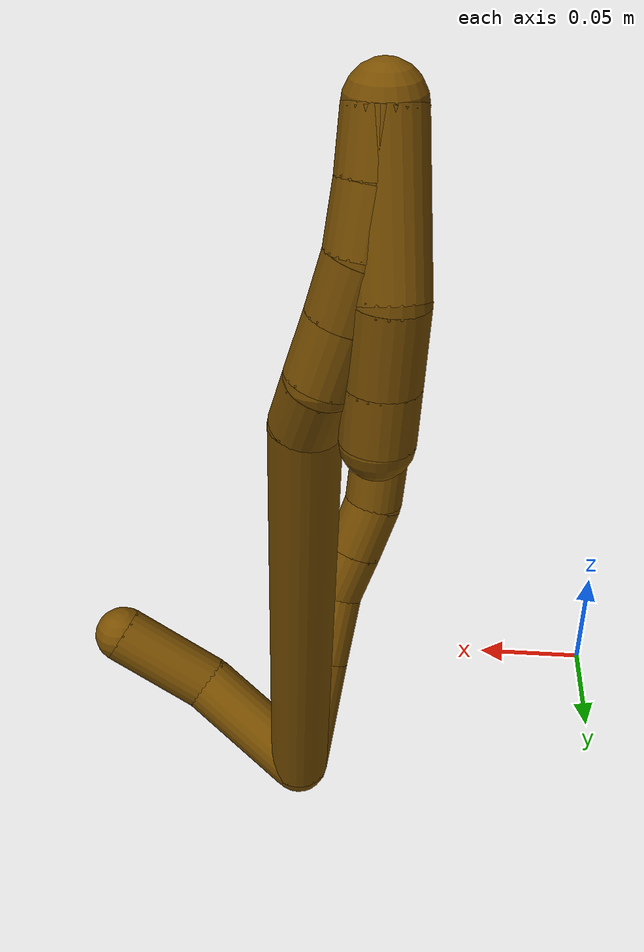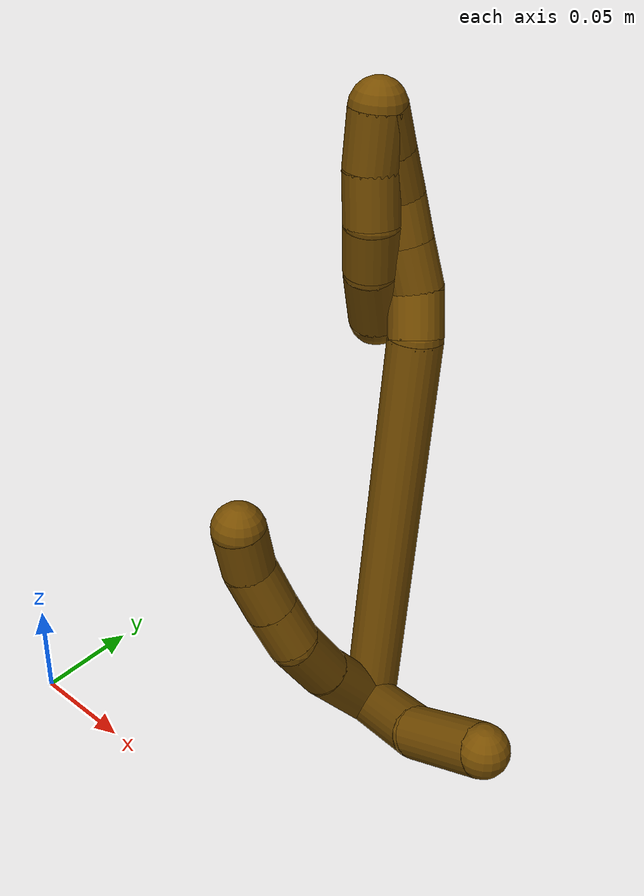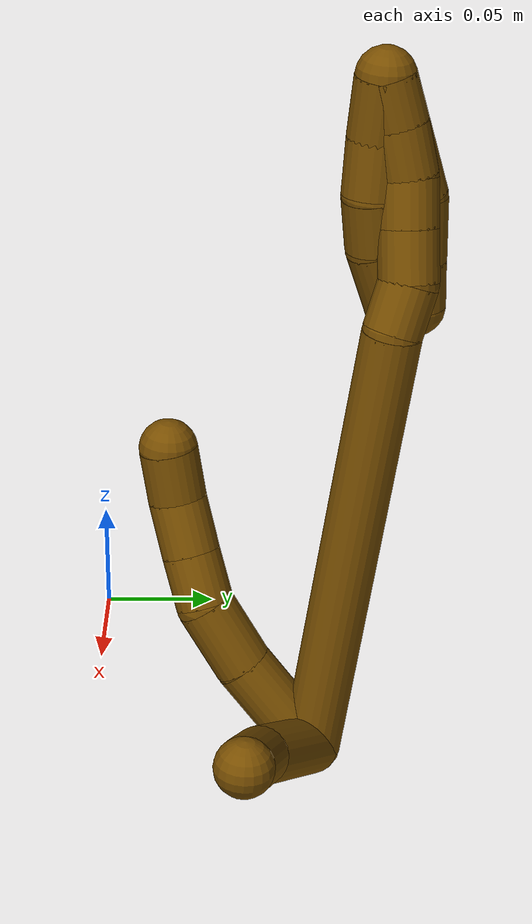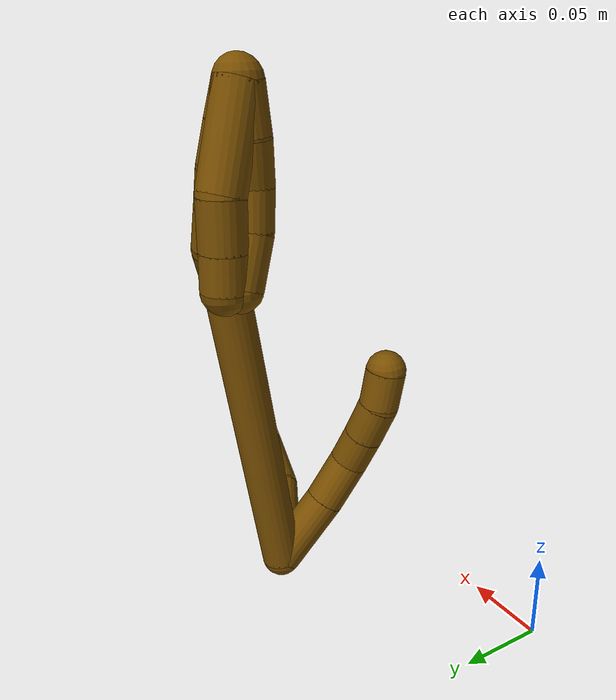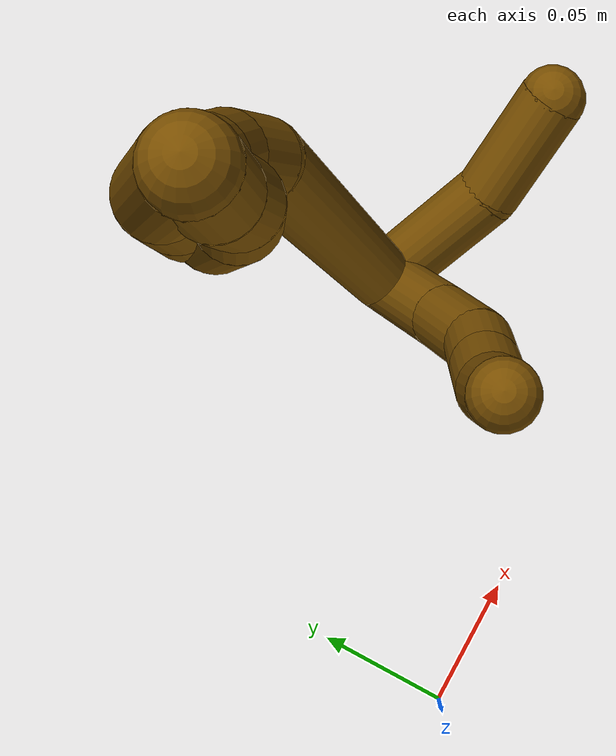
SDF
<sdf version="1.7">
 <world name="default">
  <model name="12">
   <static>0</static>
   <link name="12">
    <collision name="collision-cylinder-e_1_2_8">
     <pose>-0.003622 -0.015588 0.017711 0.721742 -0.152337 -0.057587</pose>
     <geometry><cylinder><radius>0.0125</radius><length>0.04774</length></cylinder></geometry>
     <surface>
      <friction><ode><mu>1.16</mu><mu2>1.16</mu2><slip1>0</slip1><slip2>0</slip2></ode></friction>
      <contact><ode><kp>1e+06</kp><kd>1</kd><max_vel>0</max_vel><min_depth>0.001</min_depth></ode></contact>
     </surface>
    </collision>
    <visual name="visual-cylinder-e_1_2_8">
     <pose>-0.003622 -0.015588 0.017711 0.721742 -0.152337 -0.057587</pose>
     <geometry><cylinder><radius>0.0125</radius><length>0.04774</length></cylinder></geometry>
     <material><ambient>0.466667 0.301961 0 1</ambient></material>
    </visual>
    <collision name="collision-cylinder-e_2_8_9">
     <pose>-0.009917 -0.03993 0.048406 0.593167 -0.169028 -0.051766</pose>
     <geometry><cylinder><radius>0.0125</radius><length>0.031774</length></cylinder></geometry>
     <surface>
      <friction><ode><mu>1.16</mu><mu2>1.16</mu2><slip1>0</slip1><slip2>0</slip2></ode></friction>
      <contact><ode><kp>1e+06</kp><kd>1</kd><max_vel>0</max_vel><min_depth>0.001</min_depth></ode></contact>
     </surface>
    </collision>
    <visual name="visual-cylinder-e_2_8_9">
     <pose>-0.009917 -0.03993 0.048406 0.593167 -0.169028 -0.051766</pose>
     <geometry><cylinder><radius>0.0125</radius><length>0.031774</length></cylinder></geometry>
     <material><ambient>0.466667 0.301961 0 1</ambient></material>
    </visual>
    <collision name="collision-cylinder-e_3_9_10">
     <pose>-0.016757 -0.052163 0.071482 0.332036 -0.372216 -0.063078</pose>
     <geometry><cylinder><radius>0.0125</radius><length>0.022917</length></cylinder></geometry>
     <surface>
      <friction><ode><mu>1.16</mu><mu2>1.16</mu2><slip1>0</slip1><slip2>0</slip2></ode></friction>
      <contact><ode><kp>1e+06</kp><kd>1</kd><max_vel>0</max_vel><min_depth>0.001</min_depth></ode></contact>
     </surface>
    </collision>
    <visual name="visual-cylinder-e_3_9_10">
     <pose>-0.016757 -0.052163 0.071482 0.332036 -0.372216 -0.063078</pose>
     <geometry><cylinder><radius>0.0125</radius><length>0.022917</length></cylinder></geometry>
     <material><ambient>0.466667 0.301961 0 1</ambient></material>
    </visual>
    <collision name="collision-cylinder-e_4_10_11">
     <pose>-0.025018 -0.05903 0.092455 0.30175 -0.344887 -0.052947</pose>
     <geometry><cylinder><radius>0.0125</radius><length>0.024219</length></cylinder></geometry>
     <surface>
      <friction><ode><mu>1.16</mu><mu2>1.16</mu2><slip1>0</slip1><slip2>0</slip2></ode></friction>
      <contact><ode><kp>1e+06</kp><kd>1</kd><max_vel>0</max_vel><min_depth>0.001</min_depth></ode></contact>
     </surface>
    </collision>
    <visual name="visual-cylinder-e_4_10_11">
     <pose>-0.025018 -0.05903 0.092455 0.30175 -0.344887 -0.052947</pose>
     <geometry><cylinder><radius>0.0125</radius><length>0.024219</length></cylinder></geometry>
     <material><ambient>0.466667 0.301961 0 1</ambient></material>
    </visual>
    <collision name="collision-cylinder-e_5_11_6">
     <pose>-0.030267 -0.064773 0.114713 0.204232 -0.099088 -0.010162</pose>
     <geometry><cylinder><radius>0.0125</radius><length>0.023351</length></cylinder></geometry>
     <surface>
      <friction><ode><mu>1.16</mu><mu2>1.16</mu2><slip1>0</slip1><slip2>0</slip2></ode></friction>
      <contact><ode><kp>1e+06</kp><kd>1</kd><max_vel>0</max_vel><min_depth>0.001</min_depth></ode></contact>
     </surface>
    </collision>
    <visual name="visual-cylinder-e_5_11_6">
     <pose>-0.030267 -0.064773 0.114713 0.204232 -0.099088 -0.010162</pose>
     <geometry><cylinder><radius>0.0125</radius><length>0.023351</length></cylinder></geometry>
     <material><ambient>0.466667 0.301961 0 1</ambient></material>
    </visual>
    <collision name="collision-cylinder-e_1_2_12">
     <pose>0.022024 -0.011866 0.012229 0.770335 0.912311 0.392725</pose>
     <geometry><cylinder><radius>0.0125</radius><length>0.055693</length></cylinder></geometry>
     <surface>
      <friction><ode><mu>1.16</mu><mu2>1.16</mu2><slip1>0</slip1><slip2>0</slip2></ode></friction>
      <contact><ode><kp>1e+06</kp><kd>1</kd><max_vel>0</max_vel><min_depth>0.001</min_depth></ode></contact>
     </surface>
    </collision>
    <visual name="visual-cylinder-e_1_2_12">
     <pose>0.022024 -0.011866 0.012229 0.770335 0.912311 0.392725</pose>
     <geometry><cylinder><radius>0.0125</radius><length>0.055693</length></cylinder></geometry>
     <material><ambient>0.466667 0.301961 0 1</ambient></material>
    </visual>
    <collision name="collision-cylinder-e_2_12_5">
     <pose>0.0631 -0.027383 0.035159 0.328754 1.03517 0.188325</pose>
     <geometry><cylinder><radius>0.0125</radius><length>0.044307</length></cylinder></geometry>
     <surface>
      <friction><ode><mu>1.16</mu><mu2>1.16</mu2><slip1>0</slip1><slip2>0</slip2></ode></friction>
      <contact><ode><kp>1e+06</kp><kd>1</kd><max_vel>0</max_vel><min_depth>0.001</min_depth></ode></contact>
     </surface>
    </collision>
    <visual name="visual-cylinder-e_2_12_5">
     <pose>0.0631 -0.027383 0.035159 0.328754 1.03517 0.188325</pose>
     <geometry><cylinder><radius>0.0125</radius><length>0.044307</length></cylinder></geometry>
     <material><ambient>0.466667 0.301961 0 1</ambient></material>
    </visual>
    <collision name="collision-cylinder-e_1_2_13">
     <pose>-0.004857 0.010321 0.097212 -0.105773 -0.049648 0.002629</pose>
     <geometry><cylinder><radius>0.0125</radius><length>0.195757</length></cylinder></geometry>
     <surface>
      <friction><ode><mu>1.16</mu><mu2>1.16</mu2><slip1>0</slip1><slip2>0</slip2></ode></friction>
      <contact><ode><kp>1e+06</kp><kd>1</kd><max_vel>0</max_vel><min_depth>0.001</min_depth></ode></contact>
     </surface>
    </collision>
    <visual name="visual-cylinder-e_1_2_13">
     <pose>-0.004857 0.010321 0.097212 -0.105773 -0.049648 0.002629</pose>
     <geometry><cylinder><radius>0.0125</radius><length>0.195757</length></cylinder></geometry>
     <material><ambient>0.466667 0.301961 0 1</ambient></material>
    </visual>
    <collision name="collision-cylinder-e_2_13_14">
     <pose>-0.01275 0.023309 0.20412 -0.268415 -0.293106 0.039855</pose>
     <geometry><cylinder><radius>0.0125</radius><length>0.02101</length></cylinder></geometry>
     <surface>
      <friction><ode><mu>1.16</mu><mu2>1.16</mu2><slip1>0</slip1><slip2>0</slip2></ode></friction>
      <contact><ode><kp>1e+06</kp><kd>1</kd><max_vel>0</max_vel><min_depth>0.001</min_depth></ode></contact>
     </surface>
    </collision>
    <visual name="visual-cylinder-e_2_13_14">
     <pose>-0.01275 0.023309 0.20412 -0.268415 -0.293106 0.039855</pose>
     <geometry><cylinder><radius>0.0125</radius><length>0.02101</length></cylinder></geometry>
     <material><ambient>0.466667 0.301961 0 1</ambient></material>
    </visual>
    <collision name="collision-cylinder-e_3_14_15">
     <pose>-0.019247 0.025268 0.22417 0.068285 -0.321956 -0.011093</pose>
     <geometry><cylinder><radius>0.0125</radius><length>0.021879</length></cylinder></geometry>
     <surface>
      <friction><ode><mu>1.16</mu><mu2>1.16</mu2><slip1>0</slip1><slip2>0</slip2></ode></friction>
      <contact><ode><kp>1e+06</kp><kd>1</kd><max_vel>0</max_vel><min_depth>0.001</min_depth></ode></contact>
     </surface>
    </collision>
    <visual name="visual-cylinder-e_3_14_15">
     <pose>-0.019247 0.025268 0.22417 0.068285 -0.321956 -0.011093</pose>
     <geometry><cylinder><radius>0.0125</radius><length>0.021879</length></cylinder></geometry>
     <material><ambient>0.466667 0.301961 0 1</ambient></material>
    </visual>
    <collision name="collision-cylinder-e_4_15_16">
     <pose>-0.025633 0.023877 0.244126 0.071047 -0.294917 -0.010557</pose>
     <geometry><cylinder><radius>0.0125</radius><length>0.020122</length></cylinder></geometry>
     <surface>
      <friction><ode><mu>1.16</mu><mu2>1.16</mu2><slip1>0</slip1><slip2>0</slip2></ode></friction>
      <contact><ode><kp>1e+06</kp><kd>1</kd><max_vel>0</max_vel><min_depth>0.001</min_depth></ode></contact>
     </surface>
    </collision>
    <visual name="visual-cylinder-e_4_15_16">
     <pose>-0.025633 0.023877 0.244126 0.071047 -0.294917 -0.010557</pose>
     <geometry><cylinder><radius>0.0125</radius><length>0.020122</length></cylinder></geometry>
     <material><ambient>0.466667 0.301961 0 1</ambient></material>
    </visual>
    <collision name="collision-cylinder-e_5_16_17">
     <pose>-0.030112 0.020502 0.263842 0.260051 -0.147507 -0.019323</pose>
     <geometry><cylinder><radius>0.0125</radius><length>0.021162</length></cylinder></geometry>
     <surface>
      <friction><ode><mu>1.16</mu><mu2>1.16</mu2><slip1>0</slip1><slip2>0</slip2></ode></friction>
      <contact><ode><kp>1e+06</kp><kd>1</kd><max_vel>0</max_vel><min_depth>0.001</min_depth></ode></contact>
     </surface>
    </collision>
    <visual name="visual-cylinder-e_5_16_17">
     <pose>-0.030112 0.020502 0.263842 0.260051 -0.147507 -0.019323</pose>
     <geometry><cylinder><radius>0.0125</radius><length>0.021162</length></cylinder></geometry>
     <material><ambient>0.466667 0.301961 0 1</ambient></material>
    </visual>
    <collision name="collision-cylinder-e_6_17_1">
     <pose>-0.032496 0.014759 0.28348 0.31008 -0.082643 -0.012924</pose>
     <geometry><cylinder><radius>0.0125</radius><length>0.02007</length></cylinder></geometry>
     <surface>
      <friction><ode><mu>1.16</mu><mu2>1.16</mu2><slip1>0</slip1><slip2>0</slip2></ode></friction>
      <contact><ode><kp>1e+06</kp><kd>1</kd><max_vel>0</max_vel><min_depth>0.001</min_depth></ode></contact>
     </surface>
    </collision>
    <visual name="visual-cylinder-e_6_17_1">
     <pose>-0.032496 0.014759 0.28348 0.31008 -0.082643 -0.012924</pose>
     <geometry><cylinder><radius>0.0125</radius><length>0.02007</length></cylinder></geometry>
     <material><ambient>0.466667 0.301961 0 1</ambient></material>
    </visual>
    <collision name="collision-cylinder-e_1_1_18">
     <pose>-0.034972 0.020062 0.267852 -2.82089 -0.062097 0.379436</pose>
     <geometry><cylinder><radius>0.0125</radius><length>0.053108</length></cylinder></geometry>
     <surface>
      <friction><ode><mu>1.16</mu><mu2>1.16</mu2><slip1>0</slip1><slip2>0</slip2></ode></friction>
      <contact><ode><kp>1e+06</kp><kd>1</kd><max_vel>0</max_vel><min_depth>0.001</min_depth></ode></contact>
     </surface>
    </collision>
    <visual name="visual-cylinder-e_1_1_18">
     <pose>-0.034972 0.020062 0.267852 -2.82089 -0.062097 0.379436</pose>
     <geometry><cylinder><radius>0.0125</radius><length>0.053108</length></cylinder></geometry>
     <material><ambient>0.466667 0.301961 0 1</ambient></material>
    </visual>
    <collision name="collision-cylinder-e_2_18_19">
     <pose>-0.035804 0.029145 0.229313 -3.08728 0.060769 -1.68297</pose>
     <geometry><cylinder><radius>0.0125</radius><length>0.026864</length></cylinder></geometry>
     <surface>
      <friction><ode><mu>1.16</mu><mu2>1.16</mu2><slip1>0</slip1><slip2>0</slip2></ode></friction>
      <contact><ode><kp>1e+06</kp><kd>1</kd><max_vel>0</max_vel><min_depth>0.001</min_depth></ode></contact>
     </surface>
    </collision>
    <visual name="visual-cylinder-e_2_18_19">
     <pose>-0.035804 0.029145 0.229313 -3.08728 0.060769 -1.68297</pose>
     <geometry><cylinder><radius>0.0125</radius><length>0.026864</length></cylinder></geometry>
     <material><ambient>0.466667 0.301961 0 1</ambient></material>
    </visual>
    <collision name="collision-cylinder-e_3_19_4">
     <pose>-0.034366 0.030525 0.205952 -3.07632 0.062165 -1.52191</pose>
     <geometry><cylinder><radius>0.0125</radius><length>0.020028</length></cylinder></geometry>
     <surface>
      <friction><ode><mu>1.16</mu><mu2>1.16</mu2><slip1>0</slip1><slip2>0</slip2></ode></friction>
      <contact><ode><kp>1e+06</kp><kd>1</kd><max_vel>0</max_vel><min_depth>0.001</min_depth></ode></contact>
     </surface>
    </collision>
    <visual name="visual-cylinder-e_3_19_4">
     <pose>-0.034366 0.030525 0.205952 -3.07632 0.062165 -1.52191</pose>
     <geometry><cylinder><radius>0.0125</radius><length>0.020028</length></cylinder></geometry>
     <material><ambient>0.466667 0.301961 0 1</ambient></material>
    </visual>
    <collision name="collision-cylinder-e_1_1_20">
     <pose>-0.033151 0.010994 0.280272 3.08559 0.013529 0.47391</pose>
     <geometry><cylinder><radius>0.0125</radius><length>0.025505</length></cylinder></geometry>
     <surface>
      <friction><ode><mu>1.16</mu><mu2>1.16</mu2><slip1>0</slip1><slip2>0</slip2></ode></friction>
      <contact><ode><kp>1e+06</kp><kd>1</kd><max_vel>0</max_vel><min_depth>0.001</min_depth></ode></contact>
     </surface>
    </collision>
    <visual name="visual-cylinder-e_1_1_20">
     <pose>-0.033151 0.010994 0.280272 3.08559 0.013529 0.47391</pose>
     <geometry><cylinder><radius>0.0125</radius><length>0.025505</length></cylinder></geometry>
     <material><ambient>0.466667 0.301961 0 1</ambient></material>
    </visual>
    <collision name="collision-cylinder-e_2_20_21">
     <pose>-0.031472 0.009981 0.256002 3.11572 0.12983 2.74864</pose>
     <geometry><cylinder><radius>0.0125</radius><length>0.023282</length></cylinder></geometry>
     <surface>
      <friction><ode><mu>1.16</mu><mu2>1.16</mu2><slip1>0</slip1><slip2>0</slip2></ode></friction>
      <contact><ode><kp>1e+06</kp><kd>1</kd><max_vel>0</max_vel><min_depth>0.001</min_depth></ode></contact>
     </surface>
    </collision>
    <visual name="visual-cylinder-e_2_20_21">
     <pose>-0.031472 0.009981 0.256002 3.11572 0.12983 2.74864</pose>
     <geometry><cylinder><radius>0.0125</radius><length>0.023282</length></cylinder></geometry>
     <material><ambient>0.466667 0.301961 0 1</ambient></material>
    </visual>
    <collision name="collision-cylinder-e_3_21_22">
     <pose>-0.030327 0.011227 0.23346 -3.00218 -0.032585 0.458523</pose>
     <geometry><cylinder><radius>0.0125</radius><length>0.022233</length></cylinder></geometry>
     <surface>
      <friction><ode><mu>1.16</mu><mu2>1.16</mu2><slip1>0</slip1><slip2>0</slip2></ode></friction>
      <contact><ode><kp>1e+06</kp><kd>1</kd><max_vel>0</max_vel><min_depth>0.001</min_depth></ode></contact>
     </surface>
    </collision>
    <visual name="visual-cylinder-e_3_21_22">
     <pose>-0.030327 0.011227 0.23346 -3.00218 -0.032585 0.458523</pose>
     <geometry><cylinder><radius>0.0125</radius><length>0.022233</length></cylinder></geometry>
     <material><ambient>0.466667 0.301961 0 1</ambient></material>
    </visual>
    <collision name="collision-cylinder-e_4_22_3">
     <pose>-0.031939 0.017775 0.208916 -2.78761 -0.086353 0.474007</pose>
     <geometry><cylinder><radius>0.0125</radius><length>0.028979</length></cylinder></geometry>
     <surface>
      <friction><ode><mu>1.16</mu><mu2>1.16</mu2><slip1>0</slip1><slip2>0</slip2></ode></friction>
      <contact><ode><kp>1e+06</kp><kd>1</kd><max_vel>0</max_vel><min_depth>0.001</min_depth></ode></contact>
     </surface>
    </collision>
    <visual name="visual-cylinder-e_4_22_3">
     <pose>-0.031939 0.017775 0.208916 -2.78761 -0.086353 0.474007</pose>
     <geometry><cylinder><radius>0.0125</radius><length>0.028979</length></cylinder></geometry>
     <material><ambient>0.466667 0.301961 0 1</ambient></material>
    </visual>
    <collision name="collision-sphere-3">
     <pose>-0.033188 0.022779 0.195375 0 -0 0</pose>
     <geometry><sphere><radius>0.0125</radius></sphere></geometry>
     <surface>
      <friction><ode><mu>1.16</mu><mu2>1.16</mu2><slip1>0</slip1><slip2>0</slip2></ode></friction>
      <contact><ode><kp>1e+06</kp><kd>1</kd><max_vel>0</max_vel><min_depth>0.001</min_depth></ode></contact>
     </surface>
    </collision>
    <visual name="visual-sphere-3">
     <pose>-0.033188 0.022779 0.195375 0 -0 0</pose>
     <geometry><sphere><radius>0.0125</radius></sphere></geometry>
     <material><ambient>0.466667 0.301961 0 1</ambient></material>
    </visual>
    <collision name="collision-sphere-22">
     <pose>-0.030689 0.012771 0.222457 0 -0 0</pose>
     <geometry><sphere><radius>0.0125</radius></sphere></geometry>
     <surface>
      <friction><ode><mu>1.16</mu><mu2>1.16</mu2><slip1>0</slip1><slip2>0</slip2></ode></friction>
      <contact><ode><kp>1e+06</kp><kd>1</kd><max_vel>0</max_vel><min_depth>0.001</min_depth></ode></contact>
     </surface>
    </collision>
    <visual name="visual-sphere-22">
     <pose>-0.030689 0.012771 0.222457 0 -0 0</pose>
     <geometry><sphere><radius>0.0125</radius></sphere></geometry>
     <material><ambient>0.466667 0.301961 0 1</ambient></material>
    </visual>
    <collision name="collision-sphere-21">
     <pose>-0.029965 0.009683 0.244462 0 -0 0</pose>
     <geometry><sphere><radius>0.0125</radius></sphere></geometry>
     <surface>
      <friction><ode><mu>1.16</mu><mu2>1.16</mu2><slip1>0</slip1><slip2>0</slip2></ode></friction>
      <contact><ode><kp>1e+06</kp><kd>1</kd><max_vel>0</max_vel><min_depth>0.001</min_depth></ode></contact>
     </surface>
    </collision>
    <visual name="visual-sphere-21">
     <pose>-0.029965 0.009683 0.244462 0 -0 0</pose>
     <geometry><sphere><radius>0.0125</radius></sphere></geometry>
     <material><ambient>0.466667 0.301961 0 1</ambient></material>
    </visual>
    <collision name="collision-sphere-20">
     <pose>-0.032979 0.01028 0.267541 0 -0 0</pose>
     <geometry><sphere><radius>0.0125</radius></sphere></geometry>
     <surface>
      <friction><ode><mu>1.16</mu><mu2>1.16</mu2><slip1>0</slip1><slip2>0</slip2></ode></friction>
      <contact><ode><kp>1e+06</kp><kd>1</kd><max_vel>0</max_vel><min_depth>0.001</min_depth></ode></contact>
     </surface>
    </collision>
    <visual name="visual-sphere-20">
     <pose>-0.032979 0.01028 0.267541 0 -0 0</pose>
     <geometry><sphere><radius>0.0125</radius></sphere></geometry>
     <material><ambient>0.466667 0.301961 0 1</ambient></material>
    </visual>
    <collision name="collision-sphere-4">
     <pose>-0.033744 0.031176 0.195979 0 -0 0</pose>
     <geometry><sphere><radius>0.0125</radius></sphere></geometry>
     <surface>
      <friction><ode><mu>1.16</mu><mu2>1.16</mu2><slip1>0</slip1><slip2>0</slip2></ode></friction>
      <contact><ode><kp>1e+06</kp><kd>1</kd><max_vel>0</max_vel><min_depth>0.001</min_depth></ode></contact>
     </surface>
    </collision>
    <visual name="visual-sphere-4">
     <pose>-0.033744 0.031176 0.195979 0 -0 0</pose>
     <geometry><sphere><radius>0.0125</radius></sphere></geometry>
     <material><ambient>0.466667 0.301961 0 1</ambient></material>
    </visual>
    <collision name="collision-sphere-6">
     <pose>-0.031422 -0.067129 0.126089 0 -0 0</pose>
     <geometry><sphere><radius>0.0125</radius></sphere></geometry>
     <surface>
      <friction><ode><mu>1.16</mu><mu2>1.16</mu2><slip1>0</slip1><slip2>0</slip2></ode></friction>
      <contact><ode><kp>1e+06</kp><kd>1</kd><max_vel>0</max_vel><min_depth>0.001</min_depth></ode></contact>
     </surface>
    </collision>
    <visual name="visual-sphere-6">
     <pose>-0.031422 -0.067129 0.126089 0 -0 0</pose>
     <geometry><sphere><radius>0.0125</radius></sphere></geometry>
     <material><ambient>0.466667 0.301961 0 1</ambient></material>
    </visual>
    <collision name="collision-sphere-11">
     <pose>-0.029112 -0.062417 0.103336 0 -0 0</pose>
     <geometry><sphere><radius>0.0125</radius></sphere></geometry>
     <surface>
      <friction><ode><mu>1.16</mu><mu2>1.16</mu2><slip1>0</slip1><slip2>0</slip2></ode></friction>
      <contact><ode><kp>1e+06</kp><kd>1</kd><max_vel>0</max_vel><min_depth>0.001</min_depth></ode></contact>
     </surface>
    </collision>
    <visual name="visual-sphere-11">
     <pose>-0.029112 -0.062417 0.103336 0 -0 0</pose>
     <geometry><sphere><radius>0.0125</radius></sphere></geometry>
     <material><ambient>0.466667 0.301961 0 1</ambient></material>
    </visual>
    <collision name="collision-sphere-10">
     <pose>-0.020924 -0.055643 0.081573 0 -0 0</pose>
     <geometry><sphere><radius>0.0125</radius></sphere></geometry>
     <surface>
      <friction><ode><mu>1.16</mu><mu2>1.16</mu2><slip1>0</slip1><slip2>0</slip2></ode></friction>
      <contact><ode><kp>1e+06</kp><kd>1</kd><max_vel>0</max_vel><min_depth>0.001</min_depth></ode></contact>
     </surface>
    </collision>
    <visual name="visual-sphere-10">
     <pose>-0.020924 -0.055643 0.081573 0 -0 0</pose>
     <geometry><sphere><radius>0.0125</radius></sphere></geometry>
     <material><ambient>0.466667 0.301961 0 1</ambient></material>
    </visual>
    <collision name="collision-sphere-9">
     <pose>-0.01259 -0.048684 0.061392 0 -0 0</pose>
     <geometry><sphere><radius>0.0125</radius></sphere></geometry>
     <surface>
      <friction><ode><mu>1.16</mu><mu2>1.16</mu2><slip1>0</slip1><slip2>0</slip2></ode></friction>
      <contact><ode><kp>1e+06</kp><kd>1</kd><max_vel>0</max_vel><min_depth>0.001</min_depth></ode></contact>
     </surface>
    </collision>
    <visual name="visual-sphere-9">
     <pose>-0.01259 -0.048684 0.061392 0 -0 0</pose>
     <geometry><sphere><radius>0.0125</radius></sphere></geometry>
     <material><ambient>0.466667 0.301961 0 1</ambient></material>
    </visual>
    <collision name="collision-sphere-2">
     <geometry><sphere><radius>0.0125</radius></sphere></geometry>
     <surface>
      <friction><ode><mu>1.16</mu><mu2>1.16</mu2><slip1>0</slip1><slip2>0</slip2></ode></friction>
      <contact><ode><kp>1e+06</kp><kd>1</kd><max_vel>0</max_vel><min_depth>0.001</min_depth></ode></contact>
     </surface>
    </collision>
    <visual name="visual-sphere-2">
     <geometry><sphere><radius>0.0125</radius></sphere></geometry>
     <material><ambient>0.466667 0.301961 0 1</ambient></material>
    </visual>
    <collision name="collision-sphere-19">
     <pose>-0.034988 0.029873 0.215926 0 -0 0</pose>
     <geometry><sphere><radius>0.0125</radius></sphere></geometry>
     <surface>
      <friction><ode><mu>1.16</mu><mu2>1.16</mu2><slip1>0</slip1><slip2>0</slip2></ode></friction>
      <contact><ode><kp>1e+06</kp><kd>1</kd><max_vel>0</max_vel><min_depth>0.001</min_depth></ode></contact>
     </surface>
    </collision>
    <visual name="visual-sphere-19">
     <pose>-0.034988 0.029873 0.215926 0 -0 0</pose>
     <geometry><sphere><radius>0.0125</radius></sphere></geometry>
     <material><ambient>0.466667 0.301961 0 1</ambient></material>
    </visual>
    <collision name="collision-sphere-8">
     <pose>-0.007244 -0.031176 0.035421 0 -0 0</pose>
     <geometry><sphere><radius>0.0125</radius></sphere></geometry>
     <surface>
      <friction><ode><mu>1.16</mu><mu2>1.16</mu2><slip1>0</slip1><slip2>0</slip2></ode></friction>
      <contact><ode><kp>1e+06</kp><kd>1</kd><max_vel>0</max_vel><min_depth>0.001</min_depth></ode></contact>
     </surface>
    </collision>
    <visual name="visual-sphere-8">
     <pose>-0.007244 -0.031176 0.035421 0 -0 0</pose>
     <geometry><sphere><radius>0.0125</radius></sphere></geometry>
     <material><ambient>0.466667 0.301961 0 1</ambient></material>
    </visual>
    <collision name="collision-sphere-12">
     <pose>0.044049 -0.023732 0.024458 0 -0 0</pose>
     <geometry><sphere><radius>0.0125</radius></sphere></geometry>
     <surface>
      <friction><ode><mu>1.16</mu><mu2>1.16</mu2><slip1>0</slip1><slip2>0</slip2></ode></friction>
      <contact><ode><kp>1e+06</kp><kd>1</kd><max_vel>0</max_vel><min_depth>0.001</min_depth></ode></contact>
     </surface>
    </collision>
    <visual name="visual-sphere-12">
     <pose>0.044049 -0.023732 0.024458 0 -0 0</pose>
     <geometry><sphere><radius>0.0125</radius></sphere></geometry>
     <material><ambient>0.466667 0.301961 0 1</ambient></material>
    </visual>
    <collision name="collision-sphere-5">
     <pose>0.08215 -0.031033 0.045861 0 -0 0</pose>
     <geometry><sphere><radius>0.0125</radius></sphere></geometry>
     <surface>
      <friction><ode><mu>1.16</mu><mu2>1.16</mu2><slip1>0</slip1><slip2>0</slip2></ode></friction>
      <contact><ode><kp>1e+06</kp><kd>1</kd><max_vel>0</max_vel><min_depth>0.001</min_depth></ode></contact>
     </surface>
    </collision>
    <visual name="visual-sphere-5">
     <pose>0.08215 -0.031033 0.045861 0 -0 0</pose>
     <geometry><sphere><radius>0.0125</radius></sphere></geometry>
     <material><ambient>0.466667 0.301961 0 1</ambient></material>
    </visual>
    <collision name="collision-sphere-13">
     <pose>-0.009715 0.020642 0.194423 0 -0 0</pose>
     <geometry><sphere><radius>0.0125</radius></sphere></geometry>
     <surface>
      <friction><ode><mu>1.16</mu><mu2>1.16</mu2><slip1>0</slip1><slip2>0</slip2></ode></friction>
      <contact><ode><kp>1e+06</kp><kd>1</kd><max_vel>0</max_vel><min_depth>0.001</min_depth></ode></contact>
     </surface>
    </collision>
    <visual name="visual-sphere-13">
     <pose>-0.009715 0.020642 0.194423 0 -0 0</pose>
     <geometry><sphere><radius>0.0125</radius></sphere></geometry>
     <material><ambient>0.466667 0.301961 0 1</ambient></material>
    </visual>
    <collision name="collision-sphere-14">
     <pose>-0.015785 0.025976 0.213817 0 -0 0</pose>
     <geometry><sphere><radius>0.0125</radius></sphere></geometry>
     <surface>
      <friction><ode><mu>1.16</mu><mu2>1.16</mu2><slip1>0</slip1><slip2>0</slip2></ode></friction>
      <contact><ode><kp>1e+06</kp><kd>1</kd><max_vel>0</max_vel><min_depth>0.001</min_depth></ode></contact>
     </surface>
    </collision>
    <visual name="visual-sphere-14">
     <pose>-0.015785 0.025976 0.213817 0 -0 0</pose>
     <geometry><sphere><radius>0.0125</radius></sphere></geometry>
     <material><ambient>0.466667 0.301961 0 1</ambient></material>
    </visual>
    <collision name="collision-sphere-15">
     <pose>-0.022708 0.02456 0.234523 0 -0 0</pose>
     <geometry><sphere><radius>0.0125</radius></sphere></geometry>
     <surface>
      <friction><ode><mu>1.16</mu><mu2>1.16</mu2><slip1>0</slip1><slip2>0</slip2></ode></friction>
      <contact><ode><kp>1e+06</kp><kd>1</kd><max_vel>0</max_vel><min_depth>0.001</min_depth></ode></contact>
     </surface>
    </collision>
    <visual name="visual-sphere-15">
     <pose>-0.022708 0.02456 0.234523 0 -0 0</pose>
     <geometry><sphere><radius>0.0125</radius></sphere></geometry>
     <material><ambient>0.466667 0.301961 0 1</ambient></material>
    </visual>
    <collision name="collision-sphere-16">
     <pose>-0.028557 0.023193 0.253728 0 -0 0</pose>
     <geometry><sphere><radius>0.0125</radius></sphere></geometry>
     <surface>
      <friction><ode><mu>1.16</mu><mu2>1.16</mu2><slip1>0</slip1><slip2>0</slip2></ode></friction>
      <contact><ode><kp>1e+06</kp><kd>1</kd><max_vel>0</max_vel><min_depth>0.001</min_depth></ode></contact>
     </surface>
    </collision>
    <visual name="visual-sphere-16">
     <pose>-0.028557 0.023193 0.253728 0 -0 0</pose>
     <geometry><sphere><radius>0.0125</radius></sphere></geometry>
     <material><ambient>0.466667 0.301961 0 1</ambient></material>
    </visual>
    <collision name="collision-sphere-17">
     <pose>-0.031667 0.017811 0.273957 0 -0 0</pose>
     <geometry><sphere><radius>0.0125</radius></sphere></geometry>
     <surface>
      <friction><ode><mu>1.16</mu><mu2>1.16</mu2><slip1>0</slip1><slip2>0</slip2></ode></friction>
      <contact><ode><kp>1e+06</kp><kd>1</kd><max_vel>0</max_vel><min_depth>0.001</min_depth></ode></contact>
     </surface>
    </collision>
    <visual name="visual-sphere-17">
     <pose>-0.031667 0.017811 0.273957 0 -0 0</pose>
     <geometry><sphere><radius>0.0125</radius></sphere></geometry>
     <material><ambient>0.466667 0.301961 0 1</ambient></material>
    </visual>
    <collision name="collision-sphere-1">
     <pose>-0.033324 0.011708 0.293004 0 -0 0</pose>
     <geometry><sphere><radius>0.0125</radius></sphere></geometry>
     <surface>
      <friction><ode><mu>1.16</mu><mu2>1.16</mu2><slip1>0</slip1><slip2>0</slip2></ode></friction>
      <contact><ode><kp>1e+06</kp><kd>1</kd><max_vel>0</max_vel><min_depth>0.001</min_depth></ode></contact>
     </surface>
    </collision>
    <visual name="visual-sphere-1">
     <pose>-0.033324 0.011708 0.293004 0 -0 0</pose>
     <geometry><sphere><radius>0.0125</radius></sphere></geometry>
     <material><ambient>0.466667 0.301961 0 1</ambient></material>
    </visual>
    <collision name="collision-sphere-18">
     <pose>-0.03662 0.028417 0.2427 0 -0 0</pose>
     <geometry><sphere><radius>0.0125</radius></sphere></geometry>
     <surface>
      <friction><ode><mu>1.16</mu><mu2>1.16</mu2><slip1>0</slip1><slip2>0</slip2></ode></friction>
      <contact><ode><kp>1e+06</kp><kd>1</kd><max_vel>0</max_vel><min_depth>0.001</min_depth></ode></contact>
     </surface>
    </collision>
    <visual name="visual-sphere-18">
     <pose>-0.03662 0.028417 0.2427 0 -0 0</pose>
     <geometry><sphere><radius>0.0125</radius></sphere></geometry>
     <material><ambient>0.466667 0.301961 0 1</ambient></material>
    </visual>
    <inertial>
     <pose>-0.011057 -1.8e-05 0.139267 0 -0 0</pose>
     <mass>0.75</mass>
     <inertia>
      <ixx>0.000704</ixx>
      <ixy>0</ixy>
      <ixz>0</ixz>
      <iyy>0.000667</iyy>
      <iyz>0</iyz>
      <izz>-1.5e-05</izz>
     </inertia>
    </inertial>
   </link>
   <pose>0.134654 0.09758 0.011493 -0.052284 -0.006161 0.01844</pose>
  </model>
 </world>
</sdf>
